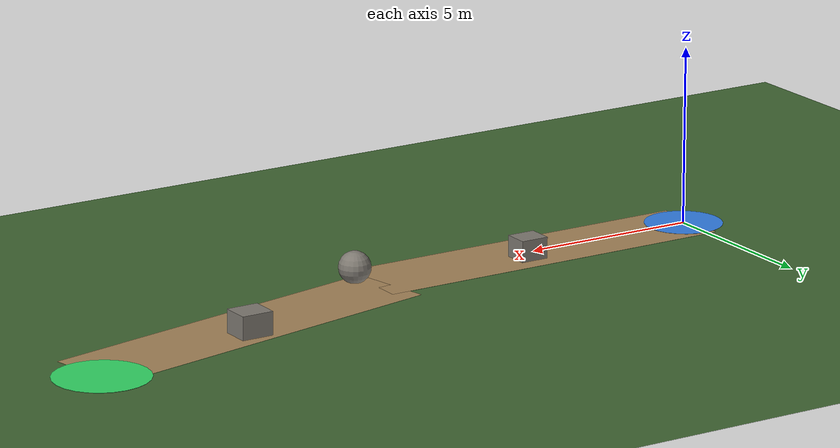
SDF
<?xml version="1.0" ?>
<sdf version="1.8">
  <world name="forest_rocky">
    <physics name="1ms" type="ignored">
      <max_step_size>0.004</max_step_size>
      <real_time_factor>1.0</real_time_factor>
    </physics>

    <plugin filename="gz-sim-physics-system" name="gz::sim::systems::Physics" />
    <plugin filename="gz-sim-user-commands-system" name="gz::sim::systems::UserCommands" />
    <plugin filename="gz-sim-scene-broadcaster-system" name="gz::sim::systems::SceneBroadcaster" />
    <plugin filename="gz-sim-sensors-system" name="gz::sim::systems::Sensors" />
    <plugin filename="gz-sim-imu-system" name="gz::sim::systems::Imu" />
    <plugin filename="gz-sim-navsat-system" name="gz::sim::systems::NavSat" />

    <light type="directional" name="sun"><cast_shadows>true</cast_shadows><pose>0 0 35 0.5 0.3 0.2</pose><diffuse>0.9 0.88 0.8 1</diffuse><direction>-0.4 0.2 -1</direction></light>
    <scene><ambient>0.58 0.62 0.58 1</ambient><background>0.5 0.7 0.9 1</background><shadows>true</shadows></scene>

    <model name="ground"><static>true</static><link name="l"><collision name="c"><geometry><plane><normal>0 0 1</normal><size>80 80</size></plane></geometry></collision><visual name="v"><geometry><plane><normal>0 0 1</normal><size>80 80</size></plane></geometry><material><ambient>0.20 0.35 0.16 1</ambient><diffuse>0.25 0.40 0.20 1</diffuse></material></visual></link></model>

    <!-- Trail -->
    <model name="trail_1"><static>true</static><pose>5.0 0.0 0.002 0 0 0</pose><link name="l"><visual name="v"><geometry><box><size>10.5 2.4 0.004</size></box></geometry><material><ambient>0.55 0.42 0.28 1</ambient><diffuse>0.65 0.52 0.35 1</diffuse></material></visual></link></model>
    <model name="trail_2"><static>true</static><pose>15.0 1.5 0.002 0 0 0.2</pose><link name="l"><visual name="v"><geometry><box><size>10.5 2.4 0.004</size></box></geometry><material><ambient>0.55 0.42 0.28 1</ambient><diffuse>0.65 0.52 0.35 1</diffuse></material></visual></link></model>

    <model name="point_a"><static>true</static><pose>0 0 0.006 0 0 0</pose><link name="l"><visual name="v"><geometry><cylinder><radius>1.1</radius><length>0.01</length></cylinder></geometry><material><ambient>0.2 0.5 0.9 1</ambient><diffuse>0.2 0.5 0.9 1</diffuse></material></visual></link></model>
    <model name="point_b"><static>true</static><pose>20 3.0 0.006 0 0 0</pose><link name="l"><visual name="v"><geometry><cylinder><radius>1.3</radius><length>0.01</length></cylinder></geometry><material><ambient>0.2 0.85 0.4 1</ambient><diffuse>0.2 0.85 0.4 1</diffuse></material></visual></link></model>

    <!-- Multiple Obstacle Rocks & Boulder Formations -->
    <model name="rock_1"><static>true</static><pose>5.5 0.5 0.35 0 0 0</pose><link name="l"><visual name="v"><geometry><box><size>0.8 0.7 0.6</size></box></geometry><material><ambient>0.4 0.38 0.36 1</ambient><diffuse>0.5 0.48 0.45 1</diffuse></material></visual><collision name="c"><geometry><box><size>0.8 0.7 0.6</size></box></geometry></collision></link></model>
    <model name="rock_2"><static>true</static><pose>10.5 -0.3 0.4 0 0 0</pose><link name="l"><visual name="v"><geometry><sphere><radius>0.45</radius></sphere></geometry><material><ambient>0.4 0.38 0.36 1</ambient><diffuse>0.5 0.48 0.45 1</diffuse></material></visual><collision name="c"><geometry><sphere><radius>0.45</radius></sphere></geometry></collision></link></model>
    <model name="rock_3"><static>true</static><pose>15.2 2.2 0.38 0 0 0</pose><link name="l"><visual name="v"><geometry><box><size>0.9 0.8 0.65</size></box></geometry><material><ambient>0.4 0.38 0.36 1</ambient><diffuse>0.5 0.48 0.45 1</diffuse></material></visual><collision name="c"><geometry><box><size>0.9 0.8 0.65</size></box></geometry></collision></link></model>
  </world>
</sdf>
